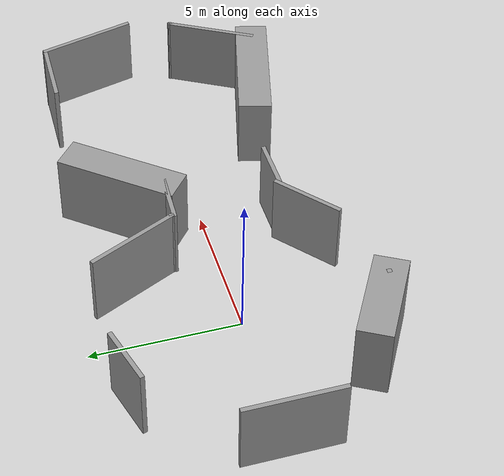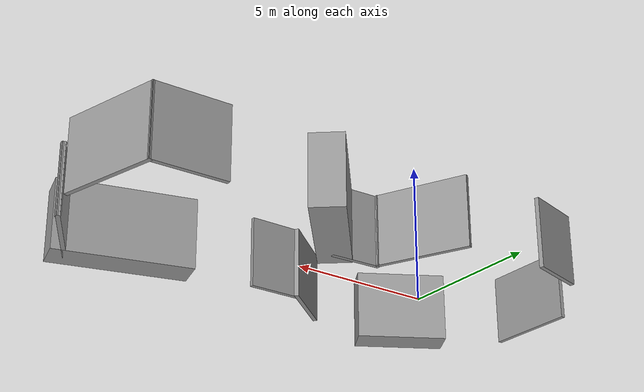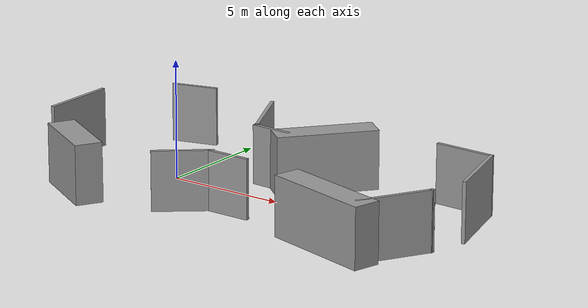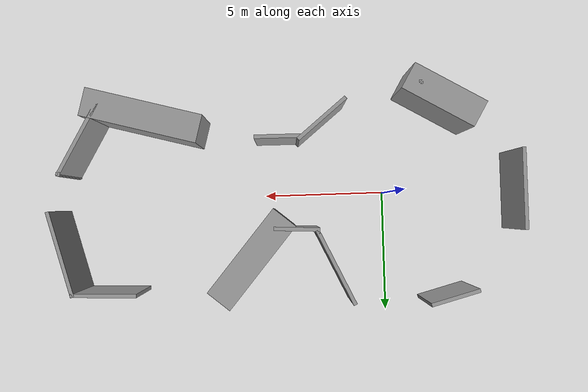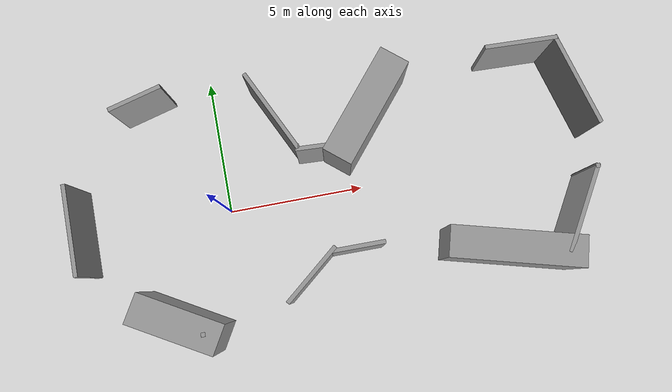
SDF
<?xml version='1.0'?>
<sdf version='1.6'>
  <model name='TestBuilding'>
    <pose frame=''>4.1419 -0.224897 0 0 -0 0</pose>
    <link name='Wall_0'>
      <collision name='Wall_0_Collision'>
        <geometry>
          <box>
            <size>3.25 0.15 2.5</size>
          </box>
        </geometry>
        <pose frame=''>0 0 1.25 0 -0 0</pose>
      </collision>
      <visual name='Wall_0_Visual'>
        <pose frame=''>0 0 1.25 0 -0 0</pose>
        <geometry>
          <box>
            <size>3.25 0.15 2.5</size>
          </box>
        </geometry>
        <material>
          <script>
            <uri>file://media/materials/scripts/gazebo.material</uri>
            <name>Gazebo/Grey</name>
          </script>
          <ambient>1 1 1 1</ambient>
        </material>
        <meta>
          <layer>0</layer>
        </meta>
      </visual>
      <pose frame=''>-9.39109 0.282277 0 0 -0 1.5708</pose>
    </link>
    <link name='Wall_11'>
      <collision name='Wall_11_Collision'>
        <geometry>
          <box>
            <size>2.50475 0.15 2.5</size>
          </box>
        </geometry>
        <pose frame=''>0 0 1.25 0 -0 0</pose>
      </collision>
      <visual name='Wall_11_Visual'>
        <pose frame=''>0 0 1.25 0 -0 0</pose>
        <geometry>
          <box>
            <size>2.50475 0.15 2.5</size>
          </box>
        </geometry>
        <material>
          <script>
            <uri>file://media/materials/scripts/gazebo.material</uri>
            <name>Gazebo/Grey</name>
          </script>
          <ambient>1 1 1 1</ambient>
        </material>
        <meta>
          <layer>0</layer>
        </meta>
      </visual>
      <pose frame=''>-1.4998 -2.72673 0 0 -0 0.687447</pose>
    </link>
    <link name='Wall_12'>
      <collision name='Wall_12_Collision'>
        <geometry>
          <box>
            <size>1.90786 0.15 2.5</size>
          </box>
        </geometry>
        <pose frame=''>0 0 1.25 0 -0 0</pose>
      </collision>
      <visual name='Wall_12_Visual'>
        <pose frame=''>0 0 1.25 0 -0 0</pose>
        <geometry>
          <box>
            <size>1.90786 0.15 2.5</size>
          </box>
        </geometry>
        <material>
          <script>
            <uri>file://media/materials/scripts/gazebo.material</uri>
            <name>Gazebo/Grey</name>
          </script>
          <ambient>1 1 1 1</ambient>
        </material>
        <meta>
          <layer>0</layer>
        </meta>
      </visual>
      <pose frame=''>0.242546 -2.07721 0 0 -0 -0.005173</pose>
    </link>
    <link name='Wall_14'>
      <collision name='Wall_14_Collision'>
        <geometry>
          <box>
            <size>4.74042 1.14 2.5</size>
          </box>
        </geometry>
        <pose frame=''>0 0 1.25 0 -0 0</pose>
      </collision>
      <visual name='Wall_14_Visual'>
        <pose frame=''>0 0 1.25 0 -0 0</pose>
        <geometry>
          <box>
            <size>4.74042 1.14 2.5</size>
          </box>
        </geometry>
        <material>
          <script>
            <uri>file://media/materials/scripts/gazebo.material</uri>
            <name>Gazebo/Grey</name>
          </script>
          <ambient>1 1 1 1</ambient>
        </material>
        <meta>
          <layer>0</layer>
        </meta>
      </visual>
      <pose frame=''>5.6341 -3.0791 0 0 -0 -0.261819</pose>
    </link>
    <link name='Wall_15'>
      <collision name='Wall_15_Collision'>
        <geometry>
          <box>
            <size>3.25 0.15 2.5</size>
          </box>
        </geometry>
        <pose frame=''>0 0 1.25 0 -0 0</pose>
      </collision>
      <visual name='Wall_15_Visual'>
        <pose frame=''>0 0 1.25 0 -0 0</pose>
        <geometry>
          <box>
            <size>3.25 0.15 2.5</size>
          </box>
        </geometry>
        <material>
          <script>
            <uri>file://media/materials/scripts/gazebo.material</uri>
            <name>Gazebo/Grey</name>
          </script>
          <ambient>1 1 1 1</ambient>
        </material>
        <meta>
          <layer>0</layer>
        </meta>
      </visual>
      <pose frame=''>8.14796 -2.20274 0 0 -0 1.04729</pose>
    </link>
    <link name='Wall_16'>
      <collision name='Wall_16_Collision'>
        <geometry>
          <box>
            <size>0.15 0.15 2.5</size>
          </box>
        </geometry>
        <pose frame=''>0 0 1.25 0 -0 0</pose>
      </collision>
      <visual name='Wall_16_Visual'>
        <pose frame=''>0 0 1.25 0 -0 0</pose>
        <geometry>
          <box>
            <size>0.15 0.15 2.5</size>
          </box>
        </geometry>
        <material>
          <script>
            <uri>file://media/materials/scripts/gazebo.material</uri>
            <name>Gazebo/Grey</name>
          </script>
          <ambient>1 1 1 1</ambient>
        </material>
        <meta>
          <layer>0</layer>
        </meta>
      </visual>
      <pose frame=''>8.92282 -0.860369 0 0 -0 0</pose>
    </link>
    <link name='Wall_18'>
      <collision name='Wall_18_Collision'>
        <geometry>
          <box>
            <size>3.5 0.15 2.5</size>
          </box>
        </geometry>
        <pose frame=''>0 0 1.25 0 -0 0</pose>
      </collision>
      <visual name='Wall_18_Visual'>
        <pose frame=''>0 0 1.25 0 -0 0</pose>
        <geometry>
          <box>
            <size>3.5 0.15 2.5</size>
          </box>
        </geometry>
        <material>
          <script>
            <uri>file://media/materials/scripts/gazebo.material</uri>
            <name>Gazebo/Grey</name>
          </script>
          <ambient>1 1 1 1</ambient>
        </material>
        <meta>
          <layer>0</layer>
        </meta>
      </visual>
      <pose frame=''>8.94071 2.30098 0 0 -0 1.8326</pose>
    </link>
    <link name='Wall_19'>
      <collision name='Wall_19_Collision'>
        <geometry>
          <box>
            <size>2.60792 0.15 2.5</size>
          </box>
        </geometry>
        <pose frame=''>0 0 1.25 0 -0 0</pose>
      </collision>
      <visual name='Wall_19_Visual'>
        <pose frame=''>0 0 1.25 0 -0 0</pose>
        <geometry>
          <box>
            <size>2.60792 0.15 2.5</size>
          </box>
        </geometry>
        <material>
          <script>
            <uri>file://media/materials/scripts/gazebo.material</uri>
            <name>Gazebo/Grey</name>
          </script>
          <ambient>1 1 1 1</ambient>
        </material>
        <meta>
          <layer>0</layer>
        </meta>
      </visual>
      <pose frame=''>7.27901 3.96268 0 0 -0 3.10596</pose>
    </link>
    <link name='Wall_21'>
      <collision name='Wall_21_Collision'>
        <geometry>
          <box>
            <size>4.20051 1.14 2.5</size>
          </box>
        </geometry>
        <pose frame=''>0 0 1.25 0 -0 0</pose>
      </collision>
      <visual name='Wall_21_Visual'>
        <pose frame=''>0 0 1.25 0 -0 0</pose>
        <geometry>
          <box>
            <size>4.20051 1.14 2.5</size>
          </box>
        </geometry>
        <material>
          <script>
            <uri>file://media/materials/scripts/gazebo.material</uri>
            <name>Gazebo/Grey</name>
          </script>
          <ambient>1 1 1 1</ambient>
        </material>
        <meta>
          <layer>0</layer>
        </meta>
      </visual>
      <pose frame=''>1.4321 2.7309 0 0 -0 -2.26503</pose>
    </link>
    <link name='Wall_22'>
      <collision name='Wall_22_Collision'>
        <geometry>
          <box>
            <size>1.81594 0.15 2.5</size>
          </box>
        </geometry>
        <pose frame=''>0 0 1.25 0 -0 0</pose>
      </collision>
      <visual name='Wall_22_Visual'>
        <pose frame=''>0 0 1.25 0 -0 0</pose>
        <geometry>
          <box>
            <size>1.81594 0.15 2.5</size>
          </box>
        </geometry>
        <material>
          <script>
            <uri>file://media/materials/scripts/gazebo.material</uri>
            <name>Gazebo/Grey</name>
          </script>
          <ambient>1 1 1 1</ambient>
        </material>
        <meta>
          <layer>0</layer>
        </meta>
      </visual>
      <pose frame=''>-0.378827 1.59643 0 0 -0 3.09171</pose>
    </link>
    <link name='Wall_23'>
      <collision name='Wall_23_Collision'>
        <geometry>
          <box>
            <size>0.15 0.15 2.5</size>
          </box>
        </geometry>
        <pose frame=''>0 0 1.25 0 -0 0</pose>
      </collision>
      <visual name='Wall_23_Visual'>
        <pose frame=''>0 0 1.25 0 -0 0</pose>
        <geometry>
          <box>
            <size>0.15 0.15 2.5</size>
          </box>
        </geometry>
        <material>
          <script>
            <uri>file://media/materials/scripts/gazebo.material</uri>
            <name>Gazebo/Grey</name>
          </script>
          <ambient>1 1 1 1</ambient>
        </material>
        <meta>
          <layer>0</layer>
        </meta>
      </visual>
      <pose frame=''>-1.21076 1.73101 0 0 -0 0</pose>
    </link>
    <link name='Wall_25'>
      <collision name='Wall_25_Collision'>
        <geometry>
          <box>
            <size>3.24004 1.14 2.5</size>
          </box>
        </geometry>
        <pose frame=''>0 0 1.25 0 -0 0</pose>
      </collision>
      <visual name='Wall_25_Visual'>
        <pose frame=''>0 0 1.25 0 -0 0</pose>
        <geometry>
          <box>
            <size>3.24004 1.14 2.5</size>
          </box>
        </geometry>
        <material>
          <script>
            <uri>file://media/materials/scripts/gazebo.material</uri>
            <name>Gazebo/Grey</name>
          </script>
          <ambient>1 1 1 1</ambient>
        </material>
        <meta>
          <layer>0</layer>
        </meta>
      </visual>
      <pose frame=''>-6.3549 -3.5061 0 0 -0 -0.523754</pose>
    </link>
    <link name='Wall_26'>
      <collision name='Wall_26_Collision'>
        <geometry>
          <box>
            <size>0.15 0.15 2.5</size>
          </box>
        </geometry>
        <pose frame=''>0 0 1.25 0 -0 0</pose>
      </collision>
      <visual name='Wall_26_Visual'>
        <pose frame=''>0 0 1.25 0 -0 0</pose>
        <geometry>
          <box>
            <size>0.15 0.15 2.5</size>
          </box>
        </geometry>
        <material>
          <script>
            <uri>file://media/materials/scripts/gazebo.material</uri>
            <name>Gazebo/Grey</name>
          </script>
          <ambient>1 1 1 1</ambient>
        </material>
        <meta>
          <layer>0</layer>
        </meta>
      </visual>
      <pose frame=''>-5.4459 -4.0311 0 0 -0 0</pose>
    </link>
    <link name='Wall_28'>
      <collision name='Wall_28_Collision'>
        <geometry>
          <box>
            <size>2 0.15 2.5</size>
          </box>
        </geometry>
        <pose frame=''>0 0 1.25 0 -0 0</pose>
      </collision>
      <visual name='Wall_28_Visual'>
        <pose frame=''>0 0 1.25 0 -0 0</pose>
        <geometry>
          <box>
            <size>2 0.15 2.5</size>
          </box>
        </geometry>
        <material>
          <script>
            <uri>file://media/materials/scripts/gazebo.material</uri>
            <name>Gazebo/Grey</name>
          </script>
          <ambient>1 1 1 1</ambient>
        </material>
        <meta>
          <layer>0</layer>
        </meta>
      </visual>
      <pose frame=''>-6.52358 4.47866 0 0 -0 0.261799</pose>
    </link>
    <link name='Wall_8'>
      <collision name='Wall_8_Collision'>
        <geometry>
          <box>
            <size>3.28723 0.15 2.5</size>
          </box>
        </geometry>
        <pose frame=''>0 0 1.25 0 -0 0</pose>
      </collision>
      <visual name='Wall_8_Visual'>
        <pose frame=''>0 0 1.25 0 -0 0</pose>
        <geometry>
          <box>
            <size>3.28723 0.15 2.5</size>
          </box>
        </geometry>
        <material>
          <script>
            <uri>file://media/materials/scripts/gazebo.material</uri>
            <name>Gazebo/Grey</name>
          </script>
          <ambient>1 1 1 1</ambient>
        </material>
        <meta>
          <layer>0</layer>
        </meta>
      </visual>
      <pose frame=''>-1.88343 3.14807 0 0 -0 -1.12759</pose>
    </link>
    <static>1</static>
  </model>
</sdf>
